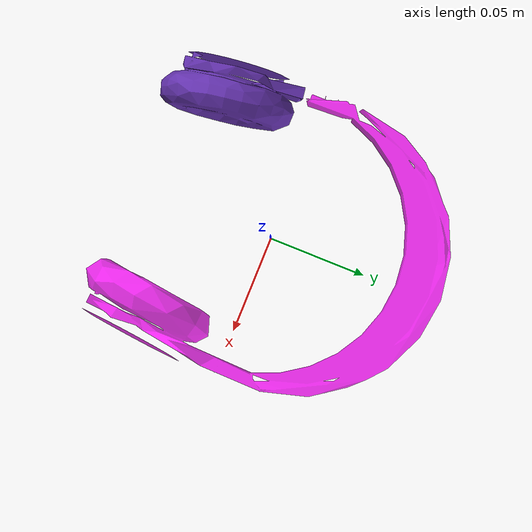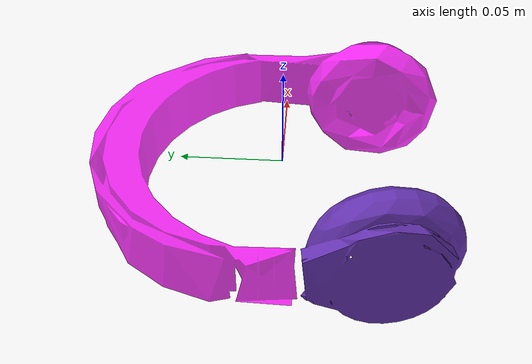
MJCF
<?xml version="1.0" encoding="utf-8"?>
<mujoco model="top_watertight_tiny">

  <asset>

    <mesh file="top_watertight_tiny.obj"/>

    <mesh file="top_watertight_tiny_collision_0.obj"/>

    <mesh file="top_watertight_tiny_collision_1.obj"/>

    <mesh file="top_watertight_tiny_collision_2.obj"/>

    <mesh file="top_watertight_tiny_collision_3.obj"/>

    <mesh file="top_watertight_tiny_collision_4.obj"/>

    <mesh file="top_watertight_tiny_collision_5.obj"/>

    <mesh file="top_watertight_tiny_collision_6.obj"/>

    <mesh file="top_watertight_tiny_collision_7.obj"/>

    <mesh file="top_watertight_tiny_collision_8.obj"/>

    <mesh file="top_watertight_tiny_collision_9.obj"/>

    <mesh file="top_watertight_tiny_collision_10.obj"/>

    <mesh file="top_watertight_tiny_collision_11.obj"/>

    <mesh file="top_watertight_tiny_collision_12.obj"/>

    <mesh file="top_watertight_tiny_collision_13.obj"/>

    <mesh file="top_watertight_tiny_collision_14.obj"/>

    <mesh file="top_watertight_tiny_collision_15.obj"/>

    <mesh file="top_watertight_tiny_collision_16.obj"/>

    <mesh file="top_watertight_tiny_collision_17.obj"/>

    <mesh file="top_watertight_tiny_collision_18.obj"/>

    <mesh file="top_watertight_tiny_collision_19.obj"/>

    <mesh file="top_watertight_tiny_collision_20.obj"/>

    <mesh file="top_watertight_tiny_collision_21.obj"/>

    <mesh file="top_watertight_tiny_collision_22.obj"/>

    <mesh file="top_watertight_tiny_collision_23.obj"/>

    <mesh file="top_watertight_tiny_collision_24.obj"/>

    <mesh file="top_watertight_tiny_collision_25.obj"/>

    <mesh file="top_watertight_tiny_collision_26.obj"/>

    <mesh file="top_watertight_tiny_collision_27.obj"/>

    <mesh file="top_watertight_tiny_collision_28.obj"/>

    <mesh file="top_watertight_tiny_collision_29.obj"/>

    <mesh file="top_watertight_tiny_collision_30.obj"/>

    <mesh file="top_watertight_tiny_collision_31.obj"/>

    <mesh file="top_watertight_tiny_collision_32.obj"/>

    <mesh file="top_watertight_tiny_collision_33.obj"/>

    <mesh file="top_watertight_tiny_collision_34.obj"/>

    <mesh file="top_watertight_tiny_collision_35.obj"/>

    <mesh file="top_watertight_tiny_collision_36.obj"/>

    <mesh file="top_watertight_tiny_collision_37.obj"/>

    <mesh file="top_watertight_tiny_collision_38.obj"/>

    <mesh file="top_watertight_tiny_collision_39.obj"/>

    <mesh file="top_watertight_tiny_collision_40.obj"/>

    <mesh file="top_watertight_tiny_collision_41.obj"/>

    <mesh file="top_watertight_tiny_collision_42.obj"/>

    <mesh file="top_watertight_tiny_collision_43.obj"/>

    <mesh file="top_watertight_tiny_collision_44.obj"/>

    <mesh file="top_watertight_tiny_collision_45.obj"/>

    <mesh file="top_watertight_tiny_collision_46.obj"/>

    <mesh file="top_watertight_tiny_collision_47.obj"/>

    <mesh file="top_watertight_tiny_collision_48.obj"/>

    <mesh file="top_watertight_tiny_collision_49.obj"/>

    <mesh file="top_watertight_tiny_collision_50.obj"/>

    <mesh file="top_watertight_tiny_collision_51.obj"/>

    <mesh file="top_watertight_tiny_collision_52.obj"/>

    <mesh file="top_watertight_tiny_collision_53.obj"/>

    <mesh file="top_watertight_tiny_collision_54.obj"/>

    <mesh file="top_watertight_tiny_collision_55.obj"/>

    <mesh file="top_watertight_tiny_collision_56.obj"/>

    <mesh file="top_watertight_tiny_collision_57.obj"/>

    <mesh file="top_watertight_tiny_collision_58.obj"/>

    <mesh file="top_watertight_tiny_collision_59.obj"/>

    <mesh file="top_watertight_tiny_collision_60.obj"/>

    <mesh file="top_watertight_tiny_collision_61.obj"/>

    <mesh file="top_watertight_tiny_collision_62.obj"/>

    <mesh file="top_watertight_tiny_collision_63.obj"/>

    <mesh file="top_watertight_tiny_collision_64.obj"/>

    <mesh file="top_watertight_tiny_collision_65.obj"/>

    <mesh file="top_watertight_tiny_collision_66.obj"/>

    <mesh file="top_watertight_tiny_collision_67.obj"/>

    <mesh file="top_watertight_tiny_collision_68.obj"/>

    <mesh file="top_watertight_tiny_collision_69.obj"/>

    <mesh file="top_watertight_tiny_collision_70.obj"/>

    <mesh file="top_watertight_tiny_collision_71.obj"/>

    <mesh file="top_watertight_tiny_collision_72.obj"/>

    <mesh file="top_watertight_tiny_collision_73.obj"/>

    <mesh file="top_watertight_tiny_collision_74.obj"/>

    <mesh file="top_watertight_tiny_collision_75.obj"/>

    <mesh file="top_watertight_tiny_collision_76.obj"/>

    <mesh file="top_watertight_tiny_collision_77.obj"/>

    <mesh file="top_watertight_tiny_collision_78.obj"/>

    <mesh file="top_watertight_tiny_collision_79.obj"/>

    <mesh file="top_watertight_tiny_collision_80.obj"/>

    <mesh file="top_watertight_tiny_collision_81.obj"/>

    <mesh file="top_watertight_tiny_collision_82.obj"/>

    <mesh file="top_watertight_tiny_collision_83.obj"/>

    <mesh file="top_watertight_tiny_collision_84.obj"/>

    <mesh file="top_watertight_tiny_collision_85.obj"/>

    <mesh file="top_watertight_tiny_collision_86.obj"/>

    <mesh file="top_watertight_tiny_collision_87.obj"/>

    <mesh file="top_watertight_tiny_collision_88.obj"/>

    <mesh file="top_watertight_tiny_collision_89.obj"/>

    <mesh file="bottom_watertight_tiny.obj"/>

    <mesh file="bottom_watertight_tiny_collision_0.obj"/>

    <mesh file="bottom_watertight_tiny_collision_1.obj"/>

    <mesh file="bottom_watertight_tiny_collision_2.obj"/>

    <mesh file="bottom_watertight_tiny_collision_3.obj"/>

    <mesh file="bottom_watertight_tiny_collision_4.obj"/>

    <mesh file="bottom_watertight_tiny_collision_5.obj"/>

    <mesh file="bottom_watertight_tiny_collision_6.obj"/>

    <mesh file="bottom_watertight_tiny_collision_7.obj"/>

    <mesh file="bottom_watertight_tiny_collision_8.obj"/>

    <mesh file="bottom_watertight_tiny_collision_9.obj"/>

    <mesh file="bottom_watertight_tiny_collision_10.obj"/>

    <mesh file="bottom_watertight_tiny_collision_11.obj"/>

    <mesh file="bottom_watertight_tiny_collision_12.obj"/>

    <mesh file="bottom_watertight_tiny_collision_13.obj"/>

    <mesh file="bottom_watertight_tiny_collision_14.obj"/>

    <mesh file="bottom_watertight_tiny_collision_15.obj"/>

    <mesh file="bottom_watertight_tiny_collision_16.obj"/>

    <mesh file="bottom_watertight_tiny_collision_17.obj"/>

    <mesh file="bottom_watertight_tiny_collision_18.obj"/>

    <mesh file="bottom_watertight_tiny_collision_19.obj"/>

    <mesh file="bottom_watertight_tiny_collision_20.obj"/>

    <mesh file="bottom_watertight_tiny_collision_21.obj"/>

    <mesh file="bottom_watertight_tiny_collision_22.obj"/>

    <mesh file="bottom_watertight_tiny_collision_23.obj"/>

    <mesh file="bottom_watertight_tiny_collision_24.obj"/>

    <mesh file="bottom_watertight_tiny_collision_25.obj"/>

    <mesh file="bottom_watertight_tiny_collision_26.obj"/>

    <mesh file="bottom_watertight_tiny_collision_27.obj"/>

    <mesh file="bottom_watertight_tiny_collision_28.obj"/>

    <mesh file="bottom_watertight_tiny_collision_29.obj"/>

    <mesh file="bottom_watertight_tiny_collision_30.obj"/>

    <mesh file="bottom_watertight_tiny_collision_31.obj"/>

    <mesh file="bottom_watertight_tiny_collision_32.obj"/>

    <mesh file="bottom_watertight_tiny_collision_33.obj"/>

    <mesh file="bottom_watertight_tiny_collision_34.obj"/>

    <mesh file="bottom_watertight_tiny_collision_35.obj"/>

    <mesh file="bottom_watertight_tiny_collision_36.obj"/>

    <mesh file="bottom_watertight_tiny_collision_37.obj"/>

    <mesh file="bottom_watertight_tiny_collision_38.obj"/>

    <mesh file="bottom_watertight_tiny_collision_39.obj"/>

    <mesh file="bottom_watertight_tiny_collision_40.obj"/>

    <mesh file="bottom_watertight_tiny_collision_41.obj"/>

    <mesh file="bottom_watertight_tiny_collision_42.obj"/>

    <mesh file="bottom_watertight_tiny_collision_43.obj"/>

    <mesh file="bottom_watertight_tiny_collision_44.obj"/>

    <mesh file="bottom_watertight_tiny_collision_45.obj"/>

    <mesh file="bottom_watertight_tiny_collision_46.obj"/>

    <mesh file="bottom_watertight_tiny_collision_47.obj"/>

    <mesh file="bottom_watertight_tiny_collision_48.obj"/>

    <mesh file="bottom_watertight_tiny_collision_49.obj"/>

    <mesh file="bottom_watertight_tiny_collision_50.obj"/>

    <mesh file="bottom_watertight_tiny_collision_51.obj"/>

    <mesh file="bottom_watertight_tiny_collision_52.obj"/>

    <mesh file="bottom_watertight_tiny_collision_53.obj"/>

    <mesh file="bottom_watertight_tiny_collision_54.obj"/>

    <mesh file="bottom_watertight_tiny_collision_55.obj"/>

    <mesh file="bottom_watertight_tiny_collision_56.obj"/>

    <mesh file="bottom_watertight_tiny_collision_57.obj"/>

    <mesh file="bottom_watertight_tiny_collision_58.obj"/>

    <mesh file="bottom_watertight_tiny_collision_59.obj"/>

    <mesh file="bottom_watertight_tiny_collision_60.obj"/>

    <mesh file="bottom_watertight_tiny_collision_61.obj"/>

    <mesh file="bottom_watertight_tiny_collision_62.obj"/>

    <mesh file="bottom_watertight_tiny_collision_63.obj"/>

    <mesh file="bottom_watertight_tiny_collision_64.obj"/>

    <mesh file="bottom_watertight_tiny_collision_65.obj"/>

    <mesh file="bottom_watertight_tiny_collision_66.obj"/>

  </asset>

  <worldbody>

    <body name="top_watertight_tiny">

      <freejoint/>

      <geom mesh="top_watertight_tiny" group="2" type="mesh" rgba="0.4 0.2 0.7 1" contype="0" conaffinity="0" solimp="0.90 0.95 0.001" solref="0.02 1.0" density="100" friction="0.95 0.4 0.3"/>

      <geom mesh="top_watertight_tiny_collision_0" rgba="0.13967404998748034 0.14075231439194458 0.1661975414874518 1" group="3" type="mesh" solimp="0.90 0.95 0.001" solref="0.02 1.0" density="100" friction="0.95 0.4 0.3"/>

      <geom mesh="top_watertight_tiny_collision_1" rgba="0.27447773743301196 0.16831844666914075 0.09370749998739325 1" group="3" type="mesh" solimp="0.90 0.95 0.001" solref="0.02 1.0" density="100" friction="0.95 0.4 0.3"/>

      <geom mesh="top_watertight_tiny_collision_2" rgba="0.20219056866449725 0.17017001246563423 0.9278434954219208 1" group="3" type="mesh" solimp="0.90 0.95 0.001" solref="0.02 1.0" density="100" friction="0.95 0.4 0.3"/>

      <geom mesh="top_watertight_tiny_collision_3" rgba="0.1737053008425422 0.5798584439851775 0.5542743538526883 1" group="3" type="mesh" solimp="0.90 0.95 0.001" solref="0.02 1.0" density="100" friction="0.95 0.4 0.3"/>

      <geom mesh="top_watertight_tiny_collision_4" rgba="0.35029883774422077 0.051542033867411186 0.19246385584189885 1" group="3" type="mesh" solimp="0.90 0.95 0.001" solref="0.02 1.0" density="100" friction="0.95 0.4 0.3"/>

      <geom mesh="top_watertight_tiny_collision_5" rgba="0.7377733532067724 0.018218570703663617 0.1513376896030354 1" group="3" type="mesh" solimp="0.90 0.95 0.001" solref="0.02 1.0" density="100" friction="0.95 0.4 0.3"/>

      <geom mesh="top_watertight_tiny_collision_6" rgba="0.37342391334378777 0.4432227076588183 0.705320335968916 1" group="3" type="mesh" solimp="0.90 0.95 0.001" solref="0.02 1.0" density="100" friction="0.95 0.4 0.3"/>

      <geom mesh="top_watertight_tiny_collision_7" rgba="0.25501024886004986 0.5828347213136643 0.003481127571495879 1" group="3" type="mesh" solimp="0.90 0.95 0.001" solref="0.02 1.0" density="100" friction="0.95 0.4 0.3"/>

      <geom mesh="top_watertight_tiny_collision_8" rgba="0.7166619290358093 0.08472277118647165 0.29299551788600586 1" group="3" type="mesh" solimp="0.90 0.95 0.001" solref="0.02 1.0" density="100" friction="0.95 0.4 0.3"/>

      <geom mesh="top_watertight_tiny_collision_9" rgba="0.011452393273562733 0.8800389271475431 0.9404572475272223 1" group="3" type="mesh" solimp="0.90 0.95 0.001" solref="0.02 1.0" density="100" friction="0.95 0.4 0.3"/>

      <geom mesh="top_watertight_tiny_collision_10" rgba="0.5652404175792853 0.9143588339539983 0.7957143383330458 1" group="3" type="mesh" solimp="0.90 0.95 0.001" solref="0.02 1.0" density="100" friction="0.95 0.4 0.3"/>

      <geom mesh="top_watertight_tiny_collision_11" rgba="0.6767047471468794 0.12481457470514368 0.45185818568785563 1" group="3" type="mesh" solimp="0.90 0.95 0.001" solref="0.02 1.0" density="100" friction="0.95 0.4 0.3"/>

      <geom mesh="top_watertight_tiny_collision_12" rgba="0.9300104971976451 0.8860037145221749 0.8659846061743806 1" group="3" type="mesh" solimp="0.90 0.95 0.001" solref="0.02 1.0" density="100" friction="0.95 0.4 0.3"/>

      <geom mesh="top_watertight_tiny_collision_13" rgba="0.14998207027154797 0.5314376090248522 0.9947605468009891 1" group="3" type="mesh" solimp="0.90 0.95 0.001" solref="0.02 1.0" density="100" friction="0.95 0.4 0.3"/>

      <geom mesh="top_watertight_tiny_collision_14" rgba="0.8285790650451215 0.6632109243324709 0.281904838819226 1" group="3" type="mesh" solimp="0.90 0.95 0.001" solref="0.02 1.0" density="100" friction="0.95 0.4 0.3"/>

      <geom mesh="top_watertight_tiny_collision_15" rgba="0.9641817379555113 0.13122233033745423 0.2611958167805364 1" group="3" type="mesh" solimp="0.90 0.95 0.001" solref="0.02 1.0" density="100" friction="0.95 0.4 0.3"/>

      <geom mesh="top_watertight_tiny_collision_16" rgba="0.11105071110314002 0.30717053048565357 0.3571464579042224 1" group="3" type="mesh" solimp="0.90 0.95 0.001" solref="0.02 1.0" density="100" friction="0.95 0.4 0.3"/>

      <geom mesh="top_watertight_tiny_collision_17" rgba="0.6847288870382722 0.6298711212201424 0.8586182501740283 1" group="3" type="mesh" solimp="0.90 0.95 0.001" solref="0.02 1.0" density="100" friction="0.95 0.4 0.3"/>

      <geom mesh="top_watertight_tiny_collision_18" rgba="0.3002619308777329 0.9538388268800996 0.6326675671208345 1" group="3" type="mesh" solimp="0.90 0.95 0.001" solref="0.02 1.0" density="100" friction="0.95 0.4 0.3"/>

      <geom mesh="top_watertight_tiny_collision_19" rgba="0.8646528162403466 0.6914503511522109 0.9783332730728452 1" group="3" type="mesh" solimp="0.90 0.95 0.001" solref="0.02 1.0" density="100" friction="0.95 0.4 0.3"/>

      <geom mesh="top_watertight_tiny_collision_20" rgba="0.32651951624507036 0.7334866769265499 0.16191330651686675 1" group="3" type="mesh" solimp="0.90 0.95 0.001" solref="0.02 1.0" density="100" friction="0.95 0.4 0.3"/>

      <geom mesh="top_watertight_tiny_collision_21" rgba="0.3013116023790223 0.7382009153878227 0.04249710958021202 1" group="3" type="mesh" solimp="0.90 0.95 0.001" solref="0.02 1.0" density="100" friction="0.95 0.4 0.3"/>

      <geom mesh="top_watertight_tiny_collision_22" rgba="0.8532701451264887 0.30280324055993413 0.611367656859883 1" group="3" type="mesh" solimp="0.90 0.95 0.001" solref="0.02 1.0" density="100" friction="0.95 0.4 0.3"/>

      <geom mesh="top_watertight_tiny_collision_23" rgba="0.5546645863565443 0.6122635096529137 0.8784605070092284 1" group="3" type="mesh" solimp="0.90 0.95 0.001" solref="0.02 1.0" density="100" friction="0.95 0.4 0.3"/>

      <geom mesh="top_watertight_tiny_collision_24" rgba="0.15032788160147503 0.11992241047212315 0.5668713466191369 1" group="3" type="mesh" solimp="0.90 0.95 0.001" solref="0.02 1.0" density="100" friction="0.95 0.4 0.3"/>

      <geom mesh="top_watertight_tiny_collision_25" rgba="0.5704069351177036 0.7480618889465457 0.31793671193683504 1" group="3" type="mesh" solimp="0.90 0.95 0.001" solref="0.02 1.0" density="100" friction="0.95 0.4 0.3"/>

      <geom mesh="top_watertight_tiny_collision_26" rgba="0.6587967026129363 0.193670453021637 0.6257973524760053 1" group="3" type="mesh" solimp="0.90 0.95 0.001" solref="0.02 1.0" density="100" friction="0.95 0.4 0.3"/>

      <geom mesh="top_watertight_tiny_collision_27" rgba="0.5157598213168179 0.5821630389470978 0.2744335854965193 1" group="3" type="mesh" solimp="0.90 0.95 0.001" solref="0.02 1.0" density="100" friction="0.95 0.4 0.3"/>

      <geom mesh="top_watertight_tiny_collision_28" rgba="0.4153143244755383 0.5074918738326545 0.05279582785874026 1" group="3" type="mesh" solimp="0.90 0.95 0.001" solref="0.02 1.0" density="100" friction="0.95 0.4 0.3"/>

      <geom mesh="top_watertight_tiny_collision_29" rgba="0.7449177749971108 0.18630034922242378 0.08228517885049957 1" group="3" type="mesh" solimp="0.90 0.95 0.001" solref="0.02 1.0" density="100" friction="0.95 0.4 0.3"/>

      <geom mesh="top_watertight_tiny_collision_30" rgba="0.030849585953122594 0.30130808757482797 0.008591391605032306 1" group="3" type="mesh" solimp="0.90 0.95 0.001" solref="0.02 1.0" density="100" friction="0.95 0.4 0.3"/>

      <geom mesh="top_watertight_tiny_collision_31" rgba="0.33243398044991557 0.17762582916141045 0.17864520106782744 1" group="3" type="mesh" solimp="0.90 0.95 0.001" solref="0.02 1.0" density="100" friction="0.95 0.4 0.3"/>

      <geom mesh="top_watertight_tiny_collision_32" rgba="0.2515266567577963 0.021753905112934957 0.2791775922875951 1" group="3" type="mesh" solimp="0.90 0.95 0.001" solref="0.02 1.0" density="100" friction="0.95 0.4 0.3"/>

      <geom mesh="top_watertight_tiny_collision_33" rgba="0.555874574400965 0.2997092833367463 0.6423393310551079 1" group="3" type="mesh" solimp="0.90 0.95 0.001" solref="0.02 1.0" density="100" friction="0.95 0.4 0.3"/>

      <geom mesh="top_watertight_tiny_collision_34" rgba="0.4877850511833114 0.9525779954915153 0.4309599236261167 1" group="3" type="mesh" solimp="0.90 0.95 0.001" solref="0.02 1.0" density="100" friction="0.95 0.4 0.3"/>

      <geom mesh="top_watertight_tiny_collision_35" rgba="0.17098167613335002 0.9280862121427622 0.17912683083865522 1" group="3" type="mesh" solimp="0.90 0.95 0.001" solref="0.02 1.0" density="100" friction="0.95 0.4 0.3"/>

      <geom mesh="top_watertight_tiny_collision_36" rgba="0.849496938645226 0.7128622409193565 0.7480398079417069 1" group="3" type="mesh" solimp="0.90 0.95 0.001" solref="0.02 1.0" density="100" friction="0.95 0.4 0.3"/>

      <geom mesh="top_watertight_tiny_collision_37" rgba="0.7330555609688031 0.9947833615391981 0.7426016586948722 1" group="3" type="mesh" solimp="0.90 0.95 0.001" solref="0.02 1.0" density="100" friction="0.95 0.4 0.3"/>

      <geom mesh="top_watertight_tiny_collision_38" rgba="0.19669098724786105 0.18256709753004707 0.47260108587753114 1" group="3" type="mesh" solimp="0.90 0.95 0.001" solref="0.02 1.0" density="100" friction="0.95 0.4 0.3"/>

      <geom mesh="top_watertight_tiny_collision_39" rgba="0.2802764490275901 0.9904680597183487 0.07043951165155393 1" group="3" type="mesh" solimp="0.90 0.95 0.001" solref="0.02 1.0" density="100" friction="0.95 0.4 0.3"/>

      <geom mesh="top_watertight_tiny_collision_40" rgba="0.8606535371520289 0.7282820491613611 0.38854465848936914 1" group="3" type="mesh" solimp="0.90 0.95 0.001" solref="0.02 1.0" density="100" friction="0.95 0.4 0.3"/>

      <geom mesh="top_watertight_tiny_collision_41" rgba="0.45648560711987207 0.5844757364488465 0.6298091771935643 1" group="3" type="mesh" solimp="0.90 0.95 0.001" solref="0.02 1.0" density="100" friction="0.95 0.4 0.3"/>

      <geom mesh="top_watertight_tiny_collision_42" rgba="0.8832661188555881 0.2905839036995599 0.859892980594791 1" group="3" type="mesh" solimp="0.90 0.95 0.001" solref="0.02 1.0" density="100" friction="0.95 0.4 0.3"/>

      <geom mesh="top_watertight_tiny_collision_43" rgba="0.8903587714941185 0.9603723738482339 0.4823745155050124 1" group="3" type="mesh" solimp="0.90 0.95 0.001" solref="0.02 1.0" density="100" friction="0.95 0.4 0.3"/>

      <geom mesh="top_watertight_tiny_collision_44" rgba="0.3290830010201523 0.36843705504337965 0.26056765703337526 1" group="3" type="mesh" solimp="0.90 0.95 0.001" solref="0.02 1.0" density="100" friction="0.95 0.4 0.3"/>

      <geom mesh="top_watertight_tiny_collision_45" rgba="0.6592201042136988 0.9171417300718738 0.8447128340455399 1" group="3" type="mesh" solimp="0.90 0.95 0.001" solref="0.02 1.0" density="100" friction="0.95 0.4 0.3"/>

      <geom mesh="top_watertight_tiny_collision_46" rgba="0.994980233087435 0.625533426471963 0.94467366870189 1" group="3" type="mesh" solimp="0.90 0.95 0.001" solref="0.02 1.0" density="100" friction="0.95 0.4 0.3"/>

      <geom mesh="top_watertight_tiny_collision_47" rgba="0.9656864145199516 0.4047216680546214 0.1440426772740221 1" group="3" type="mesh" solimp="0.90 0.95 0.001" solref="0.02 1.0" density="100" friction="0.95 0.4 0.3"/>

      <geom mesh="top_watertight_tiny_collision_48" rgba="0.4409851649543113 0.5981501520367326 0.26219244271712927 1" group="3" type="mesh" solimp="0.90 0.95 0.001" solref="0.02 1.0" density="100" friction="0.95 0.4 0.3"/>

      <geom mesh="top_watertight_tiny_collision_49" rgba="0.5493678577203934 0.9344951766302142 0.3653403826519066 1" group="3" type="mesh" solimp="0.90 0.95 0.001" solref="0.02 1.0" density="100" friction="0.95 0.4 0.3"/>

      <geom mesh="top_watertight_tiny_collision_50" rgba="0.9075510097344245 0.7184516194488307 0.6781844223437313 1" group="3" type="mesh" solimp="0.90 0.95 0.001" solref="0.02 1.0" density="100" friction="0.95 0.4 0.3"/>

      <geom mesh="top_watertight_tiny_collision_51" rgba="0.9094860222015301 0.6449212845509024 0.7116832406417487 1" group="3" type="mesh" solimp="0.90 0.95 0.001" solref="0.02 1.0" density="100" friction="0.95 0.4 0.3"/>

      <geom mesh="top_watertight_tiny_collision_52" rgba="0.07696308616619063 0.25965772376115304 0.7348175173173964 1" group="3" type="mesh" solimp="0.90 0.95 0.001" solref="0.02 1.0" density="100" friction="0.95 0.4 0.3"/>

      <geom mesh="top_watertight_tiny_collision_53" rgba="0.011764913108552322 0.4918918711455815 0.38778508781154086 1" group="3" type="mesh" solimp="0.90 0.95 0.001" solref="0.02 1.0" density="100" friction="0.95 0.4 0.3"/>

      <geom mesh="top_watertight_tiny_collision_54" rgba="0.8035056651435313 0.2664589081995561 0.8159268986284601 1" group="3" type="mesh" solimp="0.90 0.95 0.001" solref="0.02 1.0" density="100" friction="0.95 0.4 0.3"/>

      <geom mesh="top_watertight_tiny_collision_55" rgba="0.7986448020010156 0.9663051787542839 0.8732648066058498 1" group="3" type="mesh" solimp="0.90 0.95 0.001" solref="0.02 1.0" density="100" friction="0.95 0.4 0.3"/>

      <geom mesh="top_watertight_tiny_collision_56" rgba="0.7088235780483046 0.3915140769127913 0.6783854794893005 1" group="3" type="mesh" solimp="0.90 0.95 0.001" solref="0.02 1.0" density="100" friction="0.95 0.4 0.3"/>

      <geom mesh="top_watertight_tiny_collision_57" rgba="0.6168218807540101 0.27716703141872 0.0848946334073446 1" group="3" type="mesh" solimp="0.90 0.95 0.001" solref="0.02 1.0" density="100" friction="0.95 0.4 0.3"/>

      <geom mesh="top_watertight_tiny_collision_58" rgba="0.3267921843729611 0.12124028043359758 0.29458869302743385 1" group="3" type="mesh" solimp="0.90 0.95 0.001" solref="0.02 1.0" density="100" friction="0.95 0.4 0.3"/>

      <geom mesh="top_watertight_tiny_collision_59" rgba="0.6398987435397012 0.49489887033832225 0.19700863023311632 1" group="3" type="mesh" solimp="0.90 0.95 0.001" solref="0.02 1.0" density="100" friction="0.95 0.4 0.3"/>

      <geom mesh="top_watertight_tiny_collision_60" rgba="0.6135952544600703 0.4157125915195097 0.8437878668165596 1" group="3" type="mesh" solimp="0.90 0.95 0.001" solref="0.02 1.0" density="100" friction="0.95 0.4 0.3"/>

      <geom mesh="top_watertight_tiny_collision_61" rgba="0.9868143276382189 0.10273905766965263 0.9175893412885419 1" group="3" type="mesh" solimp="0.90 0.95 0.001" solref="0.02 1.0" density="100" friction="0.95 0.4 0.3"/>

      <geom mesh="top_watertight_tiny_collision_62" rgba="0.9184060610336753 0.33961798888112493 0.11817735047112565 1" group="3" type="mesh" solimp="0.90 0.95 0.001" solref="0.02 1.0" density="100" friction="0.95 0.4 0.3"/>

      <geom mesh="top_watertight_tiny_collision_63" rgba="0.09186943882936671 0.23121574589403393 0.12277060516911709 1" group="3" type="mesh" solimp="0.90 0.95 0.001" solref="0.02 1.0" density="100" friction="0.95 0.4 0.3"/>

      <geom mesh="top_watertight_tiny_collision_64" rgba="0.8675039770476943 0.9144963595656463 0.3485799848888754 1" group="3" type="mesh" solimp="0.90 0.95 0.001" solref="0.02 1.0" density="100" friction="0.95 0.4 0.3"/>

      <geom mesh="top_watertight_tiny_collision_65" rgba="0.45642886118899284 0.5818203372009288 0.5912805458571865 1" group="3" type="mesh" solimp="0.90 0.95 0.001" solref="0.02 1.0" density="100" friction="0.95 0.4 0.3"/>

      <geom mesh="top_watertight_tiny_collision_66" rgba="0.10066102598640958 0.5682382839260302 0.3647196959746425 1" group="3" type="mesh" solimp="0.90 0.95 0.001" solref="0.02 1.0" density="100" friction="0.95 0.4 0.3"/>

      <geom mesh="top_watertight_tiny_collision_67" rgba="0.6652462344473601 0.21983371509262528 0.3277569885600432 1" group="3" type="mesh" solimp="0.90 0.95 0.001" solref="0.02 1.0" density="100" friction="0.95 0.4 0.3"/>

      <geom mesh="top_watertight_tiny_collision_68" rgba="0.7019380841774137 0.40269949811966077 0.9119364030887211 1" group="3" type="mesh" solimp="0.90 0.95 0.001" solref="0.02 1.0" density="100" friction="0.95 0.4 0.3"/>

      <geom mesh="top_watertight_tiny_collision_69" rgba="0.3782898761843101 0.28180873678340057 0.700701358878118 1" group="3" type="mesh" solimp="0.90 0.95 0.001" solref="0.02 1.0" density="100" friction="0.95 0.4 0.3"/>

      <geom mesh="top_watertight_tiny_collision_70" rgba="0.5738493723532435 0.642023093029665 0.2932964319113869 1" group="3" type="mesh" solimp="0.90 0.95 0.001" solref="0.02 1.0" density="100" friction="0.95 0.4 0.3"/>

      <geom mesh="top_watertight_tiny_collision_71" rgba="0.2805413845210597 0.2250068554974355 0.9254373388539623 1" group="3" type="mesh" solimp="0.90 0.95 0.001" solref="0.02 1.0" density="100" friction="0.95 0.4 0.3"/>

      <geom mesh="top_watertight_tiny_collision_72" rgba="0.6914721461866833 0.11549506994490277 0.788236146137844 1" group="3" type="mesh" solimp="0.90 0.95 0.001" solref="0.02 1.0" density="100" friction="0.95 0.4 0.3"/>

      <geom mesh="top_watertight_tiny_collision_73" rgba="0.027588820001667957 0.2374825976339714 0.6406158118722801 1" group="3" type="mesh" solimp="0.90 0.95 0.001" solref="0.02 1.0" density="100" friction="0.95 0.4 0.3"/>

      <geom mesh="top_watertight_tiny_collision_74" rgba="0.05712961778111458 0.10294205197079664 0.5253403339840332 1" group="3" type="mesh" solimp="0.90 0.95 0.001" solref="0.02 1.0" density="100" friction="0.95 0.4 0.3"/>

      <geom mesh="top_watertight_tiny_collision_75" rgba="0.6557210915415159 0.7159278398852047 0.5982558642454315 1" group="3" type="mesh" solimp="0.90 0.95 0.001" solref="0.02 1.0" density="100" friction="0.95 0.4 0.3"/>

      <geom mesh="top_watertight_tiny_collision_76" rgba="0.05389141806306652 0.14594565683592264 0.8938497710730564 1" group="3" type="mesh" solimp="0.90 0.95 0.001" solref="0.02 1.0" density="100" friction="0.95 0.4 0.3"/>

      <geom mesh="top_watertight_tiny_collision_77" rgba="0.7042997075801115 0.4368066687273362 0.6417999486015081 1" group="3" type="mesh" solimp="0.90 0.95 0.001" solref="0.02 1.0" density="100" friction="0.95 0.4 0.3"/>

      <geom mesh="top_watertight_tiny_collision_78" rgba="0.872015044832393 0.26452949467721965 0.22047074134144273 1" group="3" type="mesh" solimp="0.90 0.95 0.001" solref="0.02 1.0" density="100" friction="0.95 0.4 0.3"/>

      <geom mesh="top_watertight_tiny_collision_79" rgba="0.2667081030051812 0.25522709480071526 0.5403099927590077 1" group="3" type="mesh" solimp="0.90 0.95 0.001" solref="0.02 1.0" density="100" friction="0.95 0.4 0.3"/>

      <geom mesh="top_watertight_tiny_collision_80" rgba="0.9489309295749416 0.19386140189479262 0.9124282659259071 1" group="3" type="mesh" solimp="0.90 0.95 0.001" solref="0.02 1.0" density="100" friction="0.95 0.4 0.3"/>

      <geom mesh="top_watertight_tiny_collision_81" rgba="0.15211390633605715 0.6509317628926925 0.609019679795088 1" group="3" type="mesh" solimp="0.90 0.95 0.001" solref="0.02 1.0" density="100" friction="0.95 0.4 0.3"/>

      <geom mesh="top_watertight_tiny_collision_82" rgba="0.4164747689357645 0.4800405760077463 0.1457654864757605 1" group="3" type="mesh" solimp="0.90 0.95 0.001" solref="0.02 1.0" density="100" friction="0.95 0.4 0.3"/>

      <geom mesh="top_watertight_tiny_collision_83" rgba="0.1801922654089091 0.6120752785556838 0.8950074237468112 1" group="3" type="mesh" solimp="0.90 0.95 0.001" solref="0.02 1.0" density="100" friction="0.95 0.4 0.3"/>

      <geom mesh="top_watertight_tiny_collision_84" rgba="0.07969151109271888 0.06674675596562973 0.7921586195211217 1" group="3" type="mesh" solimp="0.90 0.95 0.001" solref="0.02 1.0" density="100" friction="0.95 0.4 0.3"/>

      <geom mesh="top_watertight_tiny_collision_85" rgba="0.5659851830112068 0.2589356475516005 0.040022168331392716 1" group="3" type="mesh" solimp="0.90 0.95 0.001" solref="0.02 1.0" density="100" friction="0.95 0.4 0.3"/>

      <geom mesh="top_watertight_tiny_collision_86" rgba="0.5921924715063474 0.16568562881569526 0.5104878199169025 1" group="3" type="mesh" solimp="0.90 0.95 0.001" solref="0.02 1.0" density="100" friction="0.95 0.4 0.3"/>

      <geom mesh="top_watertight_tiny_collision_87" rgba="0.7444229038536961 0.9257284309578364 0.4448366024516396 1" group="3" type="mesh" solimp="0.90 0.95 0.001" solref="0.02 1.0" density="100" friction="0.95 0.4 0.3"/>

      <geom mesh="top_watertight_tiny_collision_88" rgba="0.7842074419950688 0.23155588816803008 0.34134744064275413 1" group="3" type="mesh" solimp="0.90 0.95 0.001" solref="0.02 1.0" density="100" friction="0.95 0.4 0.3"/>

      <geom mesh="top_watertight_tiny_collision_89" rgba="0.8911274336181056 0.0987739927826351 0.4676796282803789 1" group="3" type="mesh" solimp="0.90 0.95 0.001" solref="0.02 1.0" density="100" friction="0.95 0.4 0.3"/>

      <body name="bottom_watertight_tiny">

        <geom mesh="bottom_watertight_tiny" group="2" type="mesh" rgba="1 0 1 0.8" contype="0" conaffinity="0" solimp="0.90 0.95 0.001" solref="0.02 1.0" density="100" friction="0.95 0.4 0.3"/>

        <geom mesh="bottom_watertight_tiny_collision_0" rgba="0.5672811831675241 0.42362990569325354 0.05272557620846008 1" group="3" type="mesh" solimp="0.90 0.95 0.001" solref="0.02 1.0" density="100" friction="0.95 0.4 0.3"/>

        <geom mesh="bottom_watertight_tiny_collision_1" rgba="0.2165355375085397 0.38416558949918866 0.3767251161737052 1" group="3" type="mesh" solimp="0.90 0.95 0.001" solref="0.02 1.0" density="100" friction="0.95 0.4 0.3"/>

        <geom mesh="bottom_watertight_tiny_collision_2" rgba="0.7276414857843723 0.5837936273374434 0.7379411666691136 1" group="3" type="mesh" solimp="0.90 0.95 0.001" solref="0.02 1.0" density="100" friction="0.95 0.4 0.3"/>

        <geom mesh="bottom_watertight_tiny_collision_3" rgba="0.20941188987213366 0.6267530977006309 0.5565646059509556 1" group="3" type="mesh" solimp="0.90 0.95 0.001" solref="0.02 1.0" density="100" friction="0.95 0.4 0.3"/>

        <geom mesh="bottom_watertight_tiny_collision_4" rgba="0.8359598179309083 0.719453352981032 0.3469647798103792 1" group="3" type="mesh" solimp="0.90 0.95 0.001" solref="0.02 1.0" density="100" friction="0.95 0.4 0.3"/>

        <geom mesh="bottom_watertight_tiny_collision_5" rgba="0.21298222446030057 0.8406006296913264 0.4666600141631757 1" group="3" type="mesh" solimp="0.90 0.95 0.001" solref="0.02 1.0" density="100" friction="0.95 0.4 0.3"/>

        <geom mesh="bottom_watertight_tiny_collision_6" rgba="0.36532423972479255 0.13146723234259283 0.5480417236168521 1" group="3" type="mesh" solimp="0.90 0.95 0.001" solref="0.02 1.0" density="100" friction="0.95 0.4 0.3"/>

        <geom mesh="bottom_watertight_tiny_collision_7" rgba="0.7705246555982789 0.6752729591664145 0.2810131497790461 1" group="3" type="mesh" solimp="0.90 0.95 0.001" solref="0.02 1.0" density="100" friction="0.95 0.4 0.3"/>

        <geom mesh="bottom_watertight_tiny_collision_8" rgba="0.09961224871926788 0.19513569022720723 0.925302465836078 1" group="3" type="mesh" solimp="0.90 0.95 0.001" solref="0.02 1.0" density="100" friction="0.95 0.4 0.3"/>

        <geom mesh="bottom_watertight_tiny_collision_9" rgba="0.3018654124885102 0.27027360089894437 0.3947002847183745 1" group="3" type="mesh" solimp="0.90 0.95 0.001" solref="0.02 1.0" density="100" friction="0.95 0.4 0.3"/>

        <geom mesh="bottom_watertight_tiny_collision_10" rgba="0.23915010545526627 0.5401866183545865 0.43217789716953436 1" group="3" type="mesh" solimp="0.90 0.95 0.001" solref="0.02 1.0" density="100" friction="0.95 0.4 0.3"/>

        <geom mesh="bottom_watertight_tiny_collision_11" rgba="0.4593332885512901 0.9016956396006955 0.8979154307264111 1" group="3" type="mesh" solimp="0.90 0.95 0.001" solref="0.02 1.0" density="100" friction="0.95 0.4 0.3"/>

        <geom mesh="bottom_watertight_tiny_collision_12" rgba="0.25003753193605405 0.2417063612428395 0.8498512785924213 1" group="3" type="mesh" solimp="0.90 0.95 0.001" solref="0.02 1.0" density="100" friction="0.95 0.4 0.3"/>

        <geom mesh="bottom_watertight_tiny_collision_13" rgba="0.46836156813373586 0.9667365866023268 0.30651011863714306 1" group="3" type="mesh" solimp="0.90 0.95 0.001" solref="0.02 1.0" density="100" friction="0.95 0.4 0.3"/>

        <geom mesh="bottom_watertight_tiny_collision_14" rgba="0.7648792858127708 0.09842948193464385 0.16707757281228985 1" group="3" type="mesh" solimp="0.90 0.95 0.001" solref="0.02 1.0" density="100" friction="0.95 0.4 0.3"/>

        <geom mesh="bottom_watertight_tiny_collision_15" rgba="0.6267710621340404 0.3999899797540195 0.15478734978945452 1" group="3" type="mesh" solimp="0.90 0.95 0.001" solref="0.02 1.0" density="100" friction="0.95 0.4 0.3"/>

        <geom mesh="bottom_watertight_tiny_collision_16" rgba="0.5331479679881129 0.7196208466742683 0.15133022777114924 1" group="3" type="mesh" solimp="0.90 0.95 0.001" solref="0.02 1.0" density="100" friction="0.95 0.4 0.3"/>

        <geom mesh="bottom_watertight_tiny_collision_17" rgba="0.7186134793816987 0.7923515324171643 0.5077826035845723 1" group="3" type="mesh" solimp="0.90 0.95 0.001" solref="0.02 1.0" density="100" friction="0.95 0.4 0.3"/>

        <geom mesh="bottom_watertight_tiny_collision_18" rgba="0.6317370813845848 0.623231406412234 0.04997140523615051 1" group="3" type="mesh" solimp="0.90 0.95 0.001" solref="0.02 1.0" density="100" friction="0.95 0.4 0.3"/>

        <geom mesh="bottom_watertight_tiny_collision_19" rgba="0.5611168022017133 0.02675383427932221 0.35201743402825236 1" group="3" type="mesh" solimp="0.90 0.95 0.001" solref="0.02 1.0" density="100" friction="0.95 0.4 0.3"/>

        <geom mesh="bottom_watertight_tiny_collision_20" rgba="0.2845647899618815 0.8827306666170723 0.8994920267116749 1" group="3" type="mesh" solimp="0.90 0.95 0.001" solref="0.02 1.0" density="100" friction="0.95 0.4 0.3"/>

        <geom mesh="bottom_watertight_tiny_collision_21" rgba="0.1424931795585599 0.01671799917804806 0.4672208212306844 1" group="3" type="mesh" solimp="0.90 0.95 0.001" solref="0.02 1.0" density="100" friction="0.95 0.4 0.3"/>

        <geom mesh="bottom_watertight_tiny_collision_22" rgba="0.8277648240336449 0.9869867256367558 0.8828605898474042 1" group="3" type="mesh" solimp="0.90 0.95 0.001" solref="0.02 1.0" density="100" friction="0.95 0.4 0.3"/>

        <geom mesh="bottom_watertight_tiny_collision_23" rgba="0.07557016002247663 0.007226078407459591 0.04694611654656855 1" group="3" type="mesh" solimp="0.90 0.95 0.001" solref="0.02 1.0" density="100" friction="0.95 0.4 0.3"/>

        <geom mesh="bottom_watertight_tiny_collision_24" rgba="0.30901616937241083 0.42593851215726897 0.3091831080387558 1" group="3" type="mesh" solimp="0.90 0.95 0.001" solref="0.02 1.0" density="100" friction="0.95 0.4 0.3"/>

        <geom mesh="bottom_watertight_tiny_collision_25" rgba="0.6850513513557667 0.36794798995099154 0.0046143613531273164 1" group="3" type="mesh" solimp="0.90 0.95 0.001" solref="0.02 1.0" density="100" friction="0.95 0.4 0.3"/>

        <geom mesh="bottom_watertight_tiny_collision_26" rgba="0.8548371924244808 0.9748437634267149 0.4360667923673103 1" group="3" type="mesh" solimp="0.90 0.95 0.001" solref="0.02 1.0" density="100" friction="0.95 0.4 0.3"/>

        <geom mesh="bottom_watertight_tiny_collision_27" rgba="0.8626399854669233 0.3502008987674333 0.6874322371008339 1" group="3" type="mesh" solimp="0.90 0.95 0.001" solref="0.02 1.0" density="100" friction="0.95 0.4 0.3"/>

        <geom mesh="bottom_watertight_tiny_collision_28" rgba="0.8917309675171953 0.37454434833679895 0.34640964303826094 1" group="3" type="mesh" solimp="0.90 0.95 0.001" solref="0.02 1.0" density="100" friction="0.95 0.4 0.3"/>

        <geom mesh="bottom_watertight_tiny_collision_29" rgba="0.48346640359998816 0.6395930199994979 0.9907754801277536 1" group="3" type="mesh" solimp="0.90 0.95 0.001" solref="0.02 1.0" density="100" friction="0.95 0.4 0.3"/>

        <geom mesh="bottom_watertight_tiny_collision_30" rgba="0.004458854982683058 0.6499045793924889 0.21043279163050255 1" group="3" type="mesh" solimp="0.90 0.95 0.001" solref="0.02 1.0" density="100" friction="0.95 0.4 0.3"/>

        <geom mesh="bottom_watertight_tiny_collision_31" rgba="0.33770178548462815 0.7588113209165104 0.1214221459289776 1" group="3" type="mesh" solimp="0.90 0.95 0.001" solref="0.02 1.0" density="100" friction="0.95 0.4 0.3"/>

        <geom mesh="bottom_watertight_tiny_collision_32" rgba="0.022264554411860704 0.42676587288268386 0.5928163706600295 1" group="3" type="mesh" solimp="0.90 0.95 0.001" solref="0.02 1.0" density="100" friction="0.95 0.4 0.3"/>

        <geom mesh="bottom_watertight_tiny_collision_33" rgba="0.17598377758290729 0.9313396989652325 0.2081637068854757 1" group="3" type="mesh" solimp="0.90 0.95 0.001" solref="0.02 1.0" density="100" friction="0.95 0.4 0.3"/>

        <geom mesh="bottom_watertight_tiny_collision_34" rgba="0.10118715569003545 0.3498524379586553 0.8785246961028721 1" group="3" type="mesh" solimp="0.90 0.95 0.001" solref="0.02 1.0" density="100" friction="0.95 0.4 0.3"/>

        <geom mesh="bottom_watertight_tiny_collision_35" rgba="0.6475620963820915 0.3043558085297049 0.4271793994567984 1" group="3" type="mesh" solimp="0.90 0.95 0.001" solref="0.02 1.0" density="100" friction="0.95 0.4 0.3"/>

        <geom mesh="bottom_watertight_tiny_collision_36" rgba="0.2929743333871331 0.04525894124251306 0.438715969379022 1" group="3" type="mesh" solimp="0.90 0.95 0.001" solref="0.02 1.0" density="100" friction="0.95 0.4 0.3"/>

        <geom mesh="bottom_watertight_tiny_collision_37" rgba="0.354853122752928 0.5222502615444385 0.24999120641734762 1" group="3" type="mesh" solimp="0.90 0.95 0.001" solref="0.02 1.0" density="100" friction="0.95 0.4 0.3"/>

        <geom mesh="bottom_watertight_tiny_collision_38" rgba="0.538054046081765 0.0577437601839923 0.04608584129497384 1" group="3" type="mesh" solimp="0.90 0.95 0.001" solref="0.02 1.0" density="100" friction="0.95 0.4 0.3"/>

        <geom mesh="bottom_watertight_tiny_collision_39" rgba="0.5265999083122256 0.2268281338076512 0.5592935959224434 1" group="3" type="mesh" solimp="0.90 0.95 0.001" solref="0.02 1.0" density="100" friction="0.95 0.4 0.3"/>

        <geom mesh="bottom_watertight_tiny_collision_40" rgba="0.7644828799771376 0.11264791131872864 0.9352343178341744 1" group="3" type="mesh" solimp="0.90 0.95 0.001" solref="0.02 1.0" density="100" friction="0.95 0.4 0.3"/>

        <geom mesh="bottom_watertight_tiny_collision_41" rgba="0.9905224138638278 0.7780720720772974 0.25688721823266847 1" group="3" type="mesh" solimp="0.90 0.95 0.001" solref="0.02 1.0" density="100" friction="0.95 0.4 0.3"/>

        <geom mesh="bottom_watertight_tiny_collision_42" rgba="0.21336265552130584 0.3905766167716931 0.6917961766201739 1" group="3" type="mesh" solimp="0.90 0.95 0.001" solref="0.02 1.0" density="100" friction="0.95 0.4 0.3"/>

        <geom mesh="bottom_watertight_tiny_collision_43" rgba="0.27887089020388633 0.6603289145747373 0.047570101312574775 1" group="3" type="mesh" solimp="0.90 0.95 0.001" solref="0.02 1.0" density="100" friction="0.95 0.4 0.3"/>

        <geom mesh="bottom_watertight_tiny_collision_44" rgba="0.7493810111602365 0.25239365658860324 0.8516414767764539 1" group="3" type="mesh" solimp="0.90 0.95 0.001" solref="0.02 1.0" density="100" friction="0.95 0.4 0.3"/>

        <geom mesh="bottom_watertight_tiny_collision_45" rgba="0.3416984481815686 0.3473008186671618 0.33400465295237436 1" group="3" type="mesh" solimp="0.90 0.95 0.001" solref="0.02 1.0" density="100" friction="0.95 0.4 0.3"/>

        <geom mesh="bottom_watertight_tiny_collision_46" rgba="0.4528702097035807 0.38821574141136306 0.0822965547696961 1" group="3" type="mesh" solimp="0.90 0.95 0.001" solref="0.02 1.0" density="100" friction="0.95 0.4 0.3"/>

        <geom mesh="bottom_watertight_tiny_collision_47" rgba="0.3088260083909494 0.9490707500025606 0.9264407111463735 1" group="3" type="mesh" solimp="0.90 0.95 0.001" solref="0.02 1.0" density="100" friction="0.95 0.4 0.3"/>

        <geom mesh="bottom_watertight_tiny_collision_48" rgba="0.22262667167696315 0.9529538934315895 0.2269730625006744 1" group="3" type="mesh" solimp="0.90 0.95 0.001" solref="0.02 1.0" density="100" friction="0.95 0.4 0.3"/>

        <geom mesh="bottom_watertight_tiny_collision_49" rgba="0.22884983377576096 0.504688254694478 0.5590657482561351 1" group="3" type="mesh" solimp="0.90 0.95 0.001" solref="0.02 1.0" density="100" friction="0.95 0.4 0.3"/>

        <geom mesh="bottom_watertight_tiny_collision_50" rgba="0.7620737361557013 0.41342522144412686 0.4304378132821478 1" group="3" type="mesh" solimp="0.90 0.95 0.001" solref="0.02 1.0" density="100" friction="0.95 0.4 0.3"/>

        <geom mesh="bottom_watertight_tiny_collision_51" rgba="0.4169250484665884 0.5074534757991059 0.3415865441604323 1" group="3" type="mesh" solimp="0.90 0.95 0.001" solref="0.02 1.0" density="100" friction="0.95 0.4 0.3"/>

        <geom mesh="bottom_watertight_tiny_collision_52" rgba="0.2664242149866327 0.15259700016706657 0.6361602705624443 1" group="3" type="mesh" solimp="0.90 0.95 0.001" solref="0.02 1.0" density="100" friction="0.95 0.4 0.3"/>

        <geom mesh="bottom_watertight_tiny_collision_53" rgba="0.32669313617350093 0.09265587936401509 0.09375947315290756 1" group="3" type="mesh" solimp="0.90 0.95 0.001" solref="0.02 1.0" density="100" friction="0.95 0.4 0.3"/>

        <geom mesh="bottom_watertight_tiny_collision_54" rgba="0.4239904923197353 0.4066019136842124 0.7100439631815667 1" group="3" type="mesh" solimp="0.90 0.95 0.001" solref="0.02 1.0" density="100" friction="0.95 0.4 0.3"/>

        <geom mesh="bottom_watertight_tiny_collision_55" rgba="0.10217620316397624 0.2911522622317214 0.17109480241227193 1" group="3" type="mesh" solimp="0.90 0.95 0.001" solref="0.02 1.0" density="100" friction="0.95 0.4 0.3"/>

        <geom mesh="bottom_watertight_tiny_collision_56" rgba="0.49993607462407097 0.4057608103007958 0.7347665297730348 1" group="3" type="mesh" solimp="0.90 0.95 0.001" solref="0.02 1.0" density="100" friction="0.95 0.4 0.3"/>

        <geom mesh="bottom_watertight_tiny_collision_57" rgba="0.2800041833771104 0.8436013556003931 0.38700445788822724 1" group="3" type="mesh" solimp="0.90 0.95 0.001" solref="0.02 1.0" density="100" friction="0.95 0.4 0.3"/>

        <geom mesh="bottom_watertight_tiny_collision_58" rgba="0.5718563393956566 0.031990232533309904 0.2642997775426197 1" group="3" type="mesh" solimp="0.90 0.95 0.001" solref="0.02 1.0" density="100" friction="0.95 0.4 0.3"/>

        <geom mesh="bottom_watertight_tiny_collision_59" rgba="0.7800089057112297 0.17775790751930154 0.5526266160419926 1" group="3" type="mesh" solimp="0.90 0.95 0.001" solref="0.02 1.0" density="100" friction="0.95 0.4 0.3"/>

        <geom mesh="bottom_watertight_tiny_collision_60" rgba="0.6496739905262088 0.2882930844942846 0.01669933490499187 1" group="3" type="mesh" solimp="0.90 0.95 0.001" solref="0.02 1.0" density="100" friction="0.95 0.4 0.3"/>

        <geom mesh="bottom_watertight_tiny_collision_61" rgba="0.7814691795826745 0.6175764069656275 0.029024587785900002 1" group="3" type="mesh" solimp="0.90 0.95 0.001" solref="0.02 1.0" density="100" friction="0.95 0.4 0.3"/>

        <geom mesh="bottom_watertight_tiny_collision_62" rgba="0.5156776692965765 0.8162305233887246 0.8893165433100801 1" group="3" type="mesh" solimp="0.90 0.95 0.001" solref="0.02 1.0" density="100" friction="0.95 0.4 0.3"/>

        <geom mesh="bottom_watertight_tiny_collision_63" rgba="0.0349214720743487 0.14846805583667755 0.055097896740710306 1" group="3" type="mesh" solimp="0.90 0.95 0.001" solref="0.02 1.0" density="100" friction="0.95 0.4 0.3"/>

        <geom mesh="bottom_watertight_tiny_collision_64" rgba="0.5125148858820319 0.49677712762696025 0.9920889479361255 1" group="3" type="mesh" solimp="0.90 0.95 0.001" solref="0.02 1.0" density="100" friction="0.95 0.4 0.3"/>

        <geom mesh="bottom_watertight_tiny_collision_65" rgba="0.46338465634788084 0.6382382940509703 0.13474175031898494 1" group="3" type="mesh" solimp="0.90 0.95 0.001" solref="0.02 1.0" density="100" friction="0.95 0.4 0.3"/>

        <geom mesh="bottom_watertight_tiny_collision_66" rgba="0.5627892161538725 0.37603730772697297 0.8281948292040406 1" group="3" type="mesh" solimp="0.90 0.95 0.001" solref="0.02 1.0" density="100" friction="0.95 0.4 0.3"/>

        <site name="bottom_watertight_tiny_touch_site" pos="0 0 0" size="0.2" rgba="1 0 0 0." type="sphere"/>
      </body>

      <site name="top_watertight_tiny_touch_site" pos="0 0 0" size="0.2" rgba="1 0 0 0." type="sphere"/>
    </body>

  </worldbody>

  <sensor>
    <touch name="top_watertight_tiny_touch" site="top_watertight_tiny_touch_site"/>
    <touch name="bottom_watertight_tiny_touch" site="bottom_watertight_tiny_touch_site"/>
  </sensor>
</mujoco>
